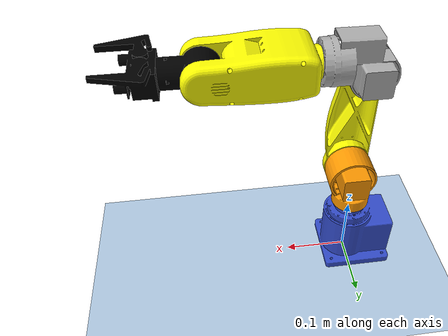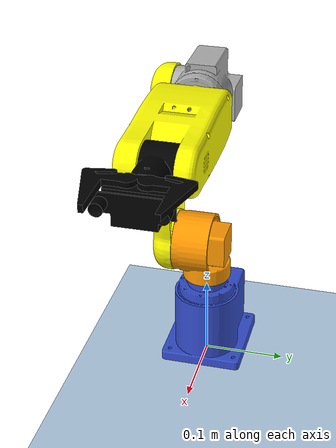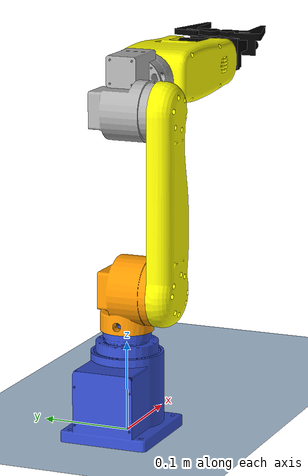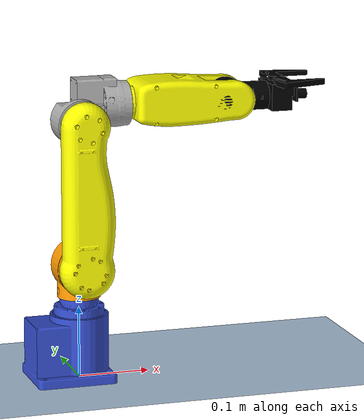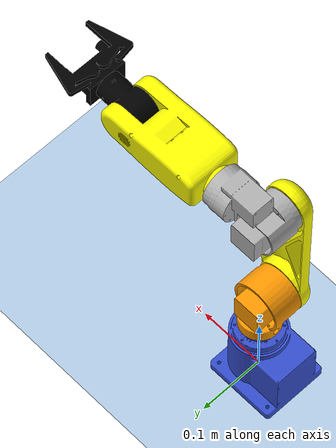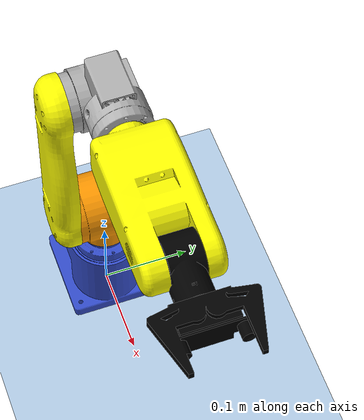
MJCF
<mujoco model="arm_v2_interactive">
  <!-- 编译器设置，改为度数制 -->
  <compiler angle="degree"/>

  <!-- =================================================
       全局仿真选项 (Option) 和视觉效果 (Visual)
       ================================================= -->
  <option>
    <!-- 2. 关闭不必要的物理计算，但保留执行器功能 -->
    <flag contact="disable"
          gravity="disable"
          limit="disable"/>
    <!-- 注意：我们不再禁用 actuation，因为滑块需要它 -->
  </option>

  <visual>
    <!-- 改进的灯光和渲染设置 -->
    <headlight ambient="0.6 0.6 0.6" diffuse="0.8 0.8 0.8" specular="0.3 0.3 0.3"/>
    <rgba haze="0.15 0.25 0.35 1"/>
    <global offwidth="2048" offheight="2048"/>
    <quality shadowsize="4096"/>
    <map fogstart="3" fogend="10" force="0.1"/>
  </visual>

  <!-- =================================================
       材质定义
       ================================================= -->
  <asset>
    <!-- 机械臂网格文件 -->
    <mesh name="base_link"  file="base_link.STL"/>
    <mesh name="1_Link"  file="1_Link.STL"/>
    <mesh name="2_Link"  file="2_Link.STL"/>
    <mesh name="3_Link"  file="3_Link.STL"/>
    <mesh name="4_Link"  file="4_Link.STL"/>
    <mesh name="5_Link"  file="5_Link.STL"/>
    <mesh name="6_Link"  file="6_Link.STL"/>

    <!-- 材质定义 -->
    <material name="floor_mat" rgba="0.7 0.8 0.9 1" specular="0.3" shininess="0.5" reflectance="0.2"/>
    <material name="wall_mat" rgba="0.9 0.9 0.95 1" specular="0.1" shininess="0.1"/>
    <material name="base_mat" rgba="0.2 0.3 0.8 1" specular="0.4" shininess="0.8"/>
    <material name="link1_mat" rgba="0.3 0.3 0.3 1" specular="0.5" shininess="0.6"/>
    <material name="link2_mat" rgba="0.1 0.4 0.8 1" specular="0.5" shininess="0.6"/>
    <material name="link3_mat" rgba="0.3 0.3 0.3 1" specular="0.5" shininess="0.6"/>
    <material name="link4_mat" rgba="0.1 0.4 0.8 1" specular="0.5" shininess="0.6"/>
    <material name="link5_mat" rgba="0.3 0.3 0.3 1" specular="0.5" shininess="0.6"/>
    <material name="link6_mat" rgba="0.9 0.9 0.9 1" specular="0.7" shininess="0.8"/>
    <material name="grid_mat" texture="grid" rgba="1 1 1 0.8" specular="0.1" shininess="0.1"/>

    <!-- 纹理 -->
    <texture type="skybox" builtin="gradient" rgb1="0.3 0.5 0.7" rgb2="0.0 0.1 0.2" width="512" height="512"/>
    <texture name="grid" type="2d" builtin="checker" rgb1="0.8 0.9 1" rgb2="0.6 0.7 0.8" width="512" height="512" mark="cross" markrgb="0.2 0.3 0.4"/>
  </asset>

  <!-- =================================================
       世界环境和机械臂模型
       ================================================= -->
  <worldbody>
    <!-- 改进的地面 -->
    <geom name="floor" type="plane" size="3 3 0.1" material="floor_mat" condim="3"/>
    <geom name="grid_floor" type="plane" size="3 3 0.05" pos="0 0 0.001" material="grid_mat" condim="3"/>

    <!-- 环境照明 -->
    <light name="spotlight1" pos="2 2 4" dir="-1 -1 -2" diffuse="0.8 0.8 0.8" specular="0.3 0.3 0.3" directional="false"/>
    <light name="spotlight2" pos="-2 2 4" dir="1 -1 -2" diffuse="0.6 0.6 0.6" specular="0.2 0.2 0.2" directional="false"/>
    <light name="ambient" pos="0 0 6" dir="0 0 -1" diffuse="0.4 0.4 0.4" directional="true"/>

    <!-- 你的机械臂模型 -->
    <geom type="mesh" material="base_mat" mesh="base_link"/>
    <body name="1_Link" pos="0 0 0.1155">
      <inertial pos="0.000120272 -0.0447894 0.0454" quat="0.707107 0 0 0.707107" mass="0.00131109" diaginertia="9.66095e-07 4.84276e-07 4.84276e-07"/>
      <joint name="1_join" pos="0 0 0" axis="0 0 1" range="-180 180" actuatorfrcrange="-1 1"/>
      <geom type="mesh" rgba="1 0.6 0 1" mesh="1_Link"/>
      <body name="2_Link" pos="0.00010086 -0.05551 0.045437" quat="0.707105 -0.707108 0 0">
        <inertial pos="0.000192472 -0.0945429 0.00353446" quat="0.507524 0.493097 -0.5048 0.494421" mass="0.101643" diaginertia="0.000584578 0.000543713 5.34073e-05"/>
        <joint name="2_join" pos="0 0 0" axis="0 0 1" range="-180 180" actuatorfrcrange="-1 1"/>
        <geom type="mesh" rgba="1 1 0 1" mesh="2_Link"/>
        <body name="3_Link" pos="-0.00010969 -0.20005 0.0185">
          <inertial pos="0.0133259 -0.00410584 0.023275" quat="0.5 0.5 -0.5 0.5" mass="0.000809296" diaginertia="2.00722e-07 1.78283e-07 1.26414e-07"/>
          <joint name="3_join" pos="0 0 0" axis="0 0 1" range="-180 180" actuatorfrcrange="-1 1"/>
          <geom type="mesh" rgba="0.690196 0.690196 0.690196 1" mesh="3_Link"/>
          <body name="4_Link" pos="0.071553 -0.021421 0.042136" quat="0.499998 -0.5 0.500002 -0.5">
            <inertial pos="6.8702e-05 -0.000355824 0.07957" quat="0.999924 0.00262381 -0.00757171 -0.00938762" mass="0.113855" diaginertia="0.000383234 0.000365652 0.000121799"/>
            <joint name="4_join" pos="0 0 0" axis="0 0 1" range="-180 180" actuatorfrcrange="-1 1"/>
            <geom type="mesh" rgba="1 1 0 1" mesh="4_Link"/>
            <body name="5_Link" pos="-0.00013107 -0.016964 0.14858" quat="0.501099 0.498901 -0.501097 0.498899">
              <inertial pos="0.0234334 -2.07165e-05 -0.0167505" quat="0.000732964 0.698037 -0.000601433 0.716061" mass="0.0448861" diaginertia="3.37917e-05 3.06727e-05 1.31292e-05"/>
              <joint name="5_join" pos="0 0 0" axis="0 0 1" range="-180 180" actuatorfrcrange="-1 1"/>
              <geom type="mesh" rgba="0 0 0 1" mesh="5_Link"/>
              <body name="6_Link" pos="0.05286 -5.5958e-05 -0.016964" quat="0.501104 -0.498892 0.501108 -0.498892">
                <inertial pos="0.00534356 -0.00011733 0.0202068" quat="0.652949 0.677189 0.234833 -0.244799" mass="0.0930953" diaginertia="6.6877e-05 5.8389e-05 3.13453e-05"/>
                <joint name="6_join" pos="0 0 0" axis="0 0 1" range="-180 180" actuatorfrcrange="-1 1"/>
                <geom type="mesh" rgba="0 0 0 1" mesh="6_Link"/>
              </body>
            </body>
          </body>
        </body>
      </body>
    </body>
  </worldbody>

  <!-- =================================================
       执行器配置
       ================================================= -->
  <actuator>
    <position name="pos_1" joint="1_join" kp="0" ctrllimited="true" ctrlrange="-180 180"/>
    <position name="pos_2" joint="2_join" kp="0" ctrllimited="true" ctrlrange="-180 180"/>
    <position name="pos_3" joint="3_join" kp="0" ctrllimited="true" ctrlrange="-180 180"/>
    <position name="pos_4" joint="4_join" kp="0" ctrllimited="true" ctrlrange="-180 180"/>
    <position name="pos_5" joint="5_join" kp="0" ctrllimited="true" ctrlrange="-180 180"/>
    <position name="pos_6" joint="6_join" kp="0" ctrllimited="true" ctrlrange="-180 180"/>
  </actuator>

</mujoco>
